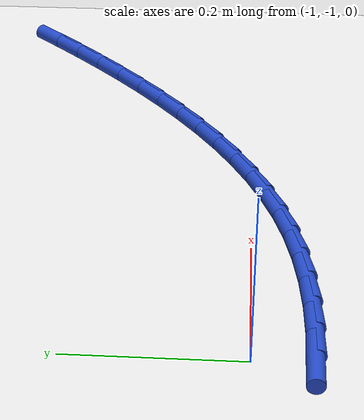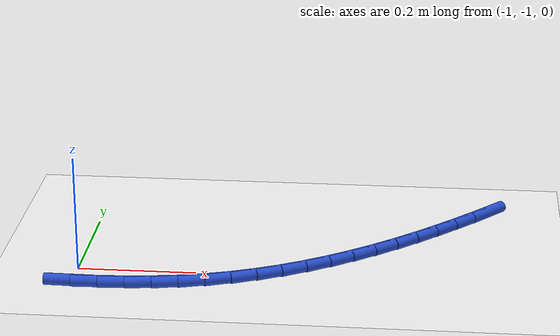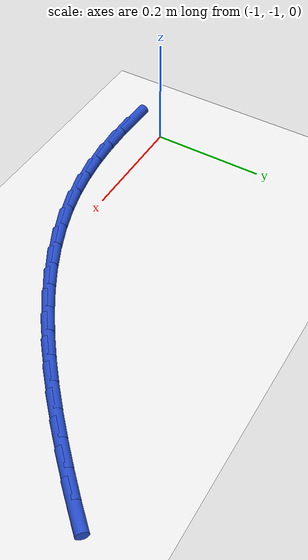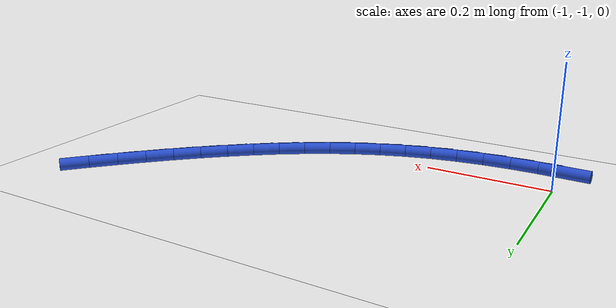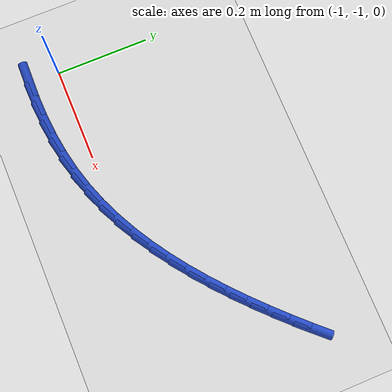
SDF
<sdf version="1.6">
 <world name="default">
  <model name="ground_plane">
   <static>1</static>
   <link name="link">
    <collision name="collision">
     <geometry><plane><normal>0 0 1</normal><size>100 100</size></plane></geometry>
     <surface><friction><ode><mu>100</mu><mu2>50</mu2></ode></friction></surface>
    </collision>
    <visual name="visual">
     <cast_shadows>0</cast_shadows>
     <geometry><plane><normal>0 0 1</normal><size>100 100</size></plane></geometry>
     <material>
      <script><uri>file://media/materials/scripts/gazebo.material</uri><name>Gazebo/WhiteGlow</name></script>
     </material>
    </visual>
   </link>
  </model>
  <model name="line">
   <link name="link_114">
    <pose>-1.0051799533757895 -1.0649549877169089 0.01 0 1.57 -0.02115199561212619</pose>
    <collision name="collision">
     <geometry><cylinder><radius>0.01</radius><length>0.08</length></cylinder></geometry>
    </collision>
    <visual name="visual">
     <material>
      <script><name>Gazebo/Blue</name><uri>file://media/materials/scripts/gazebo.material</uri></script>
     </material>
     <geometry><cylinder><radius>0.01</radius><length>0.08</length></cylinder></geometry>
    </visual>
   </link>
   <link name="link_115">
    <pose>-0.960052336538589 -1.065909669251523 0.01 0 1.57 0.02980090657771098</pose>
    <collision name="collision">
     <geometry><cylinder><radius>0.01</radius><length>0.08</length></cylinder></geometry>
    </collision>
    <visual name="visual">
     <material>
      <script><name>Gazebo/Blue</name><uri>file://media/materials/scripts/gazebo.material</uri></script>
     </material>
     <geometry><cylinder><radius>0.01</radius><length>0.08</length></cylinder></geometry>
    </visual>
   </link>
   <link name="link_116">
    <pose>-0.9152260246830086 -1.0645734089213272 0.01 0 1.57 0.08533835875819812</pose>
    <collision name="collision">
     <geometry><cylinder><radius>0.01</radius><length>0.08</length></cylinder></geometry>
    </collision>
    <visual name="visual">
     <material>
      <script><name>Gazebo/Blue</name><uri>file://media/materials/scripts/gazebo.material</uri></script>
     </material>
     <geometry><cylinder><radius>0.01</radius><length>0.08</length></cylinder></geometry>
    </visual>
   </link>
   <link name="link_117">
    <pose>-0.8708557859154822 -1.0607777068523154 0.01 0 1.57 0.14575362693660282</pose>
    <collision name="collision">
     <geometry><cylinder><radius>0.01</radius><length>0.08</length></cylinder></geometry>
    </collision>
    <visual name="visual">
     <material>
      <script><name>Gazebo/Blue</name><uri>file://media/materials/scripts/gazebo.material</uri></script>
     </material>
     <geometry><cylinder><radius>0.01</radius><length>0.08</length></cylinder></geometry>
    </visual>
   </link>
   <link name="link_118">
    <pose>-0.8270963883424426 -1.0543540631704817 0.01 0 1.57 0.21125189703961011</pose>
    <collision name="collision">
     <geometry><cylinder><radius>0.01</radius><length>0.08</length></cylinder></geometry>
    </collision>
    <visual name="visual">
     <material>
      <script><name>Gazebo/Blue</name><uri>file://media/materials/scripts/gazebo.material</uri></script>
     </material>
     <geometry><cylinder><radius>0.01</radius><length>0.08</length></cylinder></geometry>
    </visual>
   </link>
   <link name="link_119">
    <pose>-0.7841026000703255 -1.0451339780018207 0.01 0 1.57 0.2817564279210736</pose>
    <collision name="collision">
     <geometry><cylinder><radius>0.01</radius><length>0.08</length></cylinder></geometry>
    </collision>
    <visual name="visual">
     <material>
      <script><name>Gazebo/Blue</name><uri>file://media/materials/scripts/gazebo.material</uri></script>
     </material>
     <geometry><cylinder><radius>0.01</radius><length>0.08</length></cylinder></geometry>
    </visual>
   </link>
   <link name="link_120">
    <pose>-0.7420265567871952 -1.0329547747948509 0.01 0 1.57 0.35278617509516413</pose>
    <collision name="collision">
     <geometry><cylinder><radius>0.01</radius><length>0.08</length></cylinder></geometry>
    </collision>
    <visual name="visual">
     <material>
      <script><name>Gazebo/Blue</name><uri>file://media/materials/scripts/gazebo.material</uri></script>
     </material>
     <geometry><cylinder><radius>0.01</radius><length>0.08</length></cylinder></geometry>
    </visual>
   </link>
   <link name="link_121">
    <pose>-0.7009417325986845 -1.017827788762449 0.01 0 1.57 0.4189919622951858</pose>
    <collision name="collision">
     <geometry><cylinder><radius>0.01</radius><length>0.08</length></cylinder></geometry>
    </collision>
    <visual name="visual">
     <material>
      <script><name>Gazebo/Blue</name><uri>file://media/materials/scripts/gazebo.material</uri></script>
     </material>
     <geometry><cylinder><radius>0.01</radius><length>0.08</length></cylinder></geometry>
    </visual>
   </link>
   <link name="link_122">
    <pose>-0.6608313268232523 -0.999964057113136 0.01 0 1.57 0.4798492021161469</pose>
    <collision name="collision">
     <geometry><cylinder><radius>0.01</radius><length>0.08</length></cylinder></geometry>
    </collision>
    <visual name="visual">
     <material>
      <script><name>Gazebo/Blue</name><uri>file://media/materials/scripts/gazebo.material</uri></script>
     </material>
     <geometry><cylinder><radius>0.01</radius><length>0.08</length></cylinder></geometry>
    </visual>
   </link>
   <link name="link_123">
    <pose>-0.621673569904972 -0.9795856089853152 0.01 0 1.57 0.5353068039827577</pose>
    <collision name="collision">
     <geometry><cylinder><radius>0.01</radius><length>0.08</length></cylinder></geometry>
    </collision>
    <visual name="visual">
     <material>
      <script><name>Gazebo/Blue</name><uri>file://media/materials/scripts/gazebo.material</uri></script>
     </material>
     <geometry><cylinder><radius>0.01</radius><length>0.08</length></cylinder></geometry>
    </visual>
   </link>
   <link name="link_124">
    <pose>-0.583446692287919 -0.95691447351739 0.01 0 1.57 0.5854619584093946</pose>
    <collision name="collision">
     <geometry><cylinder><radius>0.01</radius><length>0.08</length></cylinder></geometry>
    </collision>
    <visual name="visual">
     <material>
      <script><name>Gazebo/Blue</name><uri>file://media/materials/scripts/gazebo.material</uri></script>
     </material>
     <geometry><cylinder><radius>0.01</radius><length>0.08</length></cylinder></geometry>
    </visual>
   </link>
   <link name="link_125">
    <pose>-0.5461289244161687 -0.9321726798477649 0.01 0 1.57 0.6305098958657832</pose>
    <collision name="collision">
     <geometry><cylinder><radius>0.01</radius><length>0.08</length></cylinder></geometry>
    </collision>
    <visual name="visual">
     <material>
      <script><name>Gazebo/Blue</name><uri>file://media/materials/scripts/gazebo.material</uri></script>
     </material>
     <geometry><cylinder><radius>0.01</radius><length>0.08</length></cylinder></geometry>
    </visual>
   </link>
   <link name="link_126">
    <pose>-0.5096984967337939 -0.9055822571148414 0.01 0 1.57 0.6707012472878783</pose>
    <collision name="collision">
     <geometry><cylinder><radius>0.01</radius><length>0.08</length></cylinder></geometry>
    </collision>
    <visual name="visual">
     <material>
      <script><name>Gazebo/Blue</name><uri>file://media/materials/scripts/gazebo.material</uri></script>
     </material>
     <geometry><cylinder><radius>0.01</radius><length>0.08</length></cylinder></geometry>
    </visual>
   </link>
   <link name="link_127">
    <pose>-0.4741336396848707 -0.8773652344570242 0.01 0 1.57 0.7063087022926984</pose>
    <collision name="collision">
     <geometry><cylinder><radius>0.01</radius><length>0.08</length></cylinder></geometry>
    </collision>
    <visual name="visual">
     <material>
      <script><name>Gazebo/Blue</name><uri>file://media/materials/scripts/gazebo.material</uri></script>
     </material>
     <geometry><cylinder><radius>0.01</radius><length>0.08</length></cylinder></geometry>
    </visual>
   </link>
   <link name="link_128">
    <pose>-0.4394125837134725 -0.8477436410127156 0.01 0 1.57 0.7376024709443904</pose>
    <collision name="collision">
     <geometry><cylinder><radius>0.01</radius><length>0.08</length></cylinder></geometry>
    </collision>
    <visual name="visual">
     <material>
      <script><name>Gazebo/Blue</name><uri>file://media/materials/scripts/gazebo.material</uri></script>
     </material>
     <geometry><cylinder><radius>0.01</radius><length>0.08</length></cylinder></geometry>
    </visual>
   </link>
   <link name="link_129">
    <pose>-0.4055135592636745 -0.8169395059203195 0.01 0 1.57 0.7648329973407682</pose>
    <collision name="collision">
     <geometry><cylinder><radius>0.01</radius><length>0.08</length></cylinder></geometry>
    </collision>
    <visual name="visual">
     <material>
      <script><name>Gazebo/Blue</name><uri>file://media/materials/scripts/gazebo.material</uri></script>
     </material>
     <geometry><cylinder><radius>0.01</radius><length>0.08</length></cylinder></geometry>
    </visual>
   </link>
   <link name="link_130">
    <pose>-0.37241479677955186 -0.7851748583182399 0.01 0 1.57 0.7882190646614075</pose>
    <collision name="collision">
     <geometry><cylinder><radius>0.01</radius><length>0.08</length></cylinder></geometry>
    </collision>
    <visual name="visual">
     <material>
      <script><name>Gazebo/Blue</name><uri>file://media/materials/scripts/gazebo.material</uri></script>
     </material>
     <geometry><cylinder><radius>0.01</radius><length>0.08</length></cylinder></geometry>
    </visual>
   </link>
   <link name="link_131">
    <pose>-0.3400945267051779 -0.7526717273448784 0.01 0 1.57 0.8083515665260828</pose>
    <collision name="collision">
     <geometry><cylinder><radius>0.01</radius><length>0.08</length></cylinder></geometry>
    </collision>
    <visual name="visual">
     <material>
      <script><name>Gazebo/Blue</name><uri>file://media/materials/scripts/gazebo.material</uri></script>
     </material>
     <geometry><cylinder><radius>0.01</radius><length>0.08</length></cylinder></geometry>
    </visual>
   </link>
   <link name="link_132">
    <pose>-0.3085408050064097 -0.7196351787103847 0.01 0 1.57 0.8294690028248726</pose>
    <collision name="collision">
     <geometry><cylinder><radius>0.01</radius><length>0.08</length></cylinder></geometry>
    </collision>
    <visual name="visual">
     <material>
      <script><name>Gazebo/Blue</name><uri>file://media/materials/scripts/gazebo.material</uri></script>
     </material>
     <geometry><cylinder><radius>0.01</radius><length>0.08</length></cylinder></geometry>
    </visual>
   </link>
  </model>
 </world>
</sdf>
